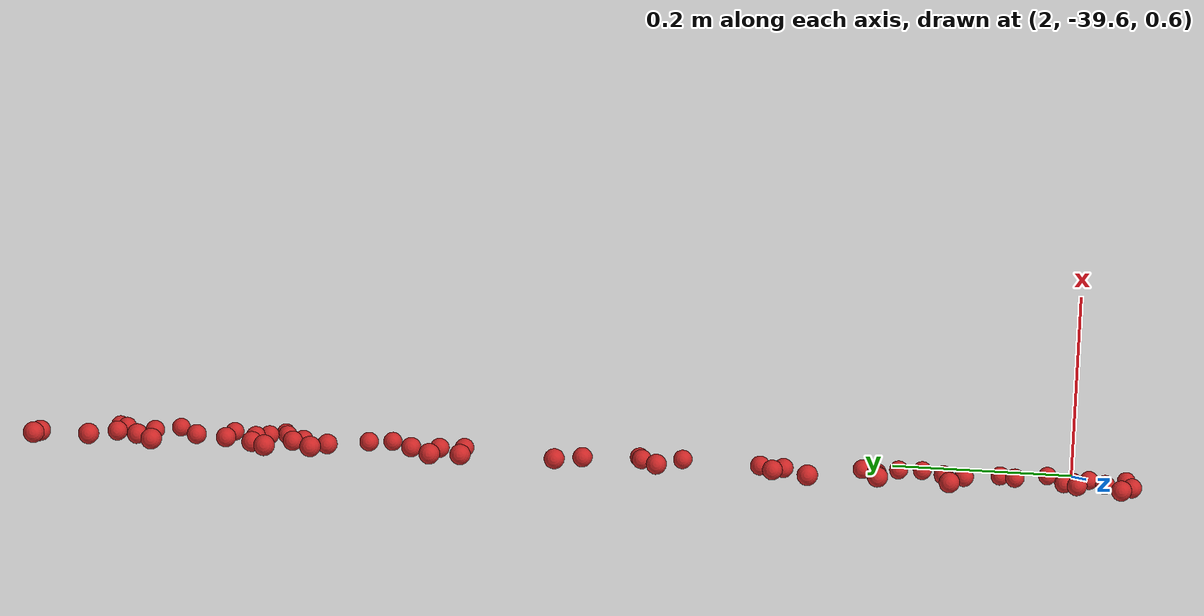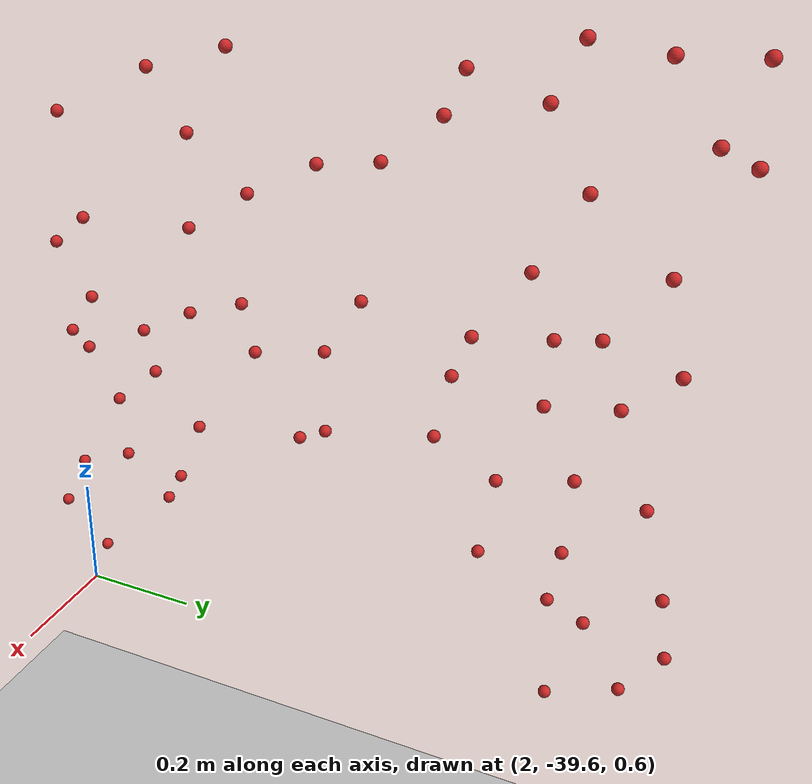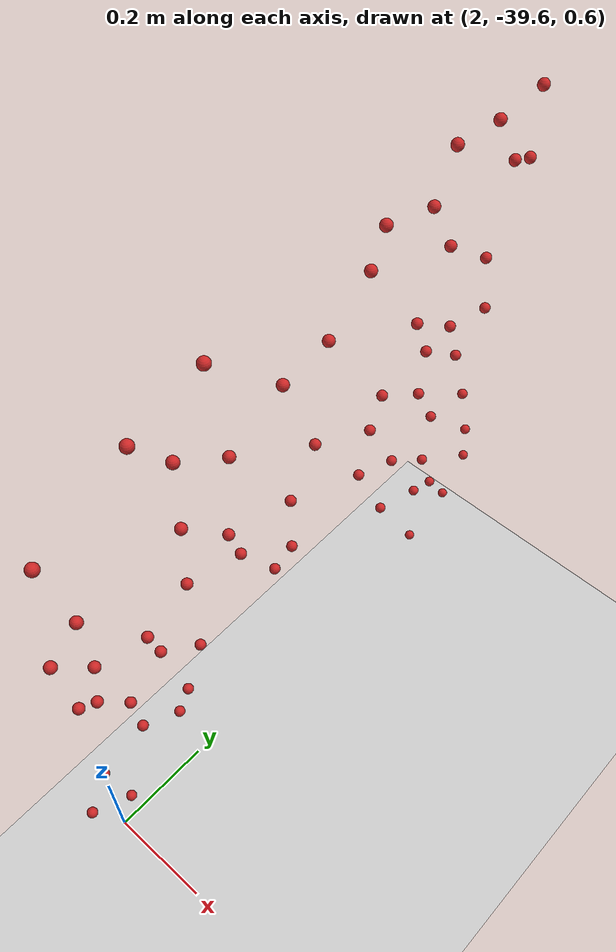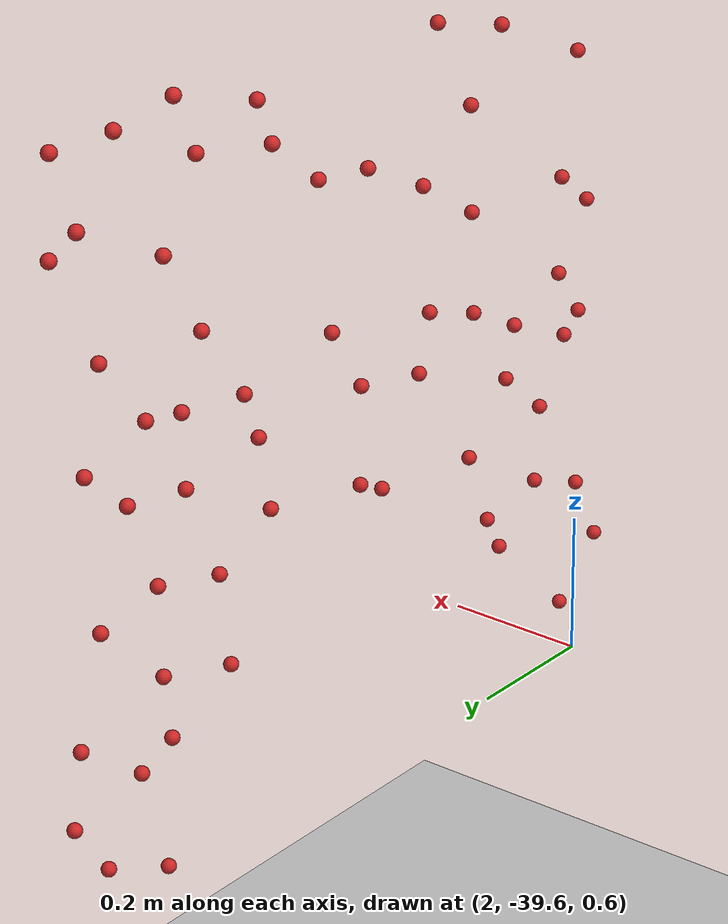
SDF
<sdf version="1.4">
 <world name="default">
  <model name="ground_plane">
   <static>1</static>
   <link name="link">
    <collision name="collision">
     <geometry><plane><normal>0 0 1</normal><size>100 100</size></plane></geometry>
     <surface><friction><ode><mu>100</mu><mu2>50</mu2></ode></friction></surface>
    </collision>
    <visual name="visual">
     <cast_shadows>0</cast_shadows>
     <geometry><plane><normal>0 0 1</normal><size>100 100</size></plane></geometry>
     <material>
      <script><uri>file://media/materials/scripts/gazebo.material</uri><name>Gazebo/Grey</name></script>
     </material>
    </visual>
    <velocity_decay><linear>0</linear><angular>0</angular></velocity_decay>
   </link>
  </model>
  <model name="apple48">
   <link name="my_apple">
    <inertial>
     <pose>2 0 0 0 -0 0</pose>
     <mass>1</mass>
     <inertia><ixx>1</ixx><ixy>0</ixy><ixz>0</ixz><iyy>1</iyy><iyz>0</iyz><izz>1</izz></inertia>
    </inertial>
    <collision name="my_apple_collision">
     <pose>2 0 1 0 -0 0</pose>
     <geometry><sphere><radius>0.01</radius></sphere></geometry>
    </collision>
    <visual name="my_apple_visual">
     <pose>2 0 1 0 -0 0</pose>
     <geometry><sphere><radius>0.01</radius></sphere></geometry>
     <material><script><name>Gazebo/Red</name><uri>__default__</uri></script></material>
    </visual>
    <gravity>0</gravity>
    <velocity_decay><linear>0</linear><angular>0</angular></velocity_decay>
   </link>
   <pose>0 -39.5987 -0.142085 0 -0 0</pose>
   <static>0</static>
  </model>
  <model name="apple49">
   <link name="my_apple">
    <inertial>
     <pose>2 0 0 0 -0 0</pose>
     <mass>1</mass>
     <inertia><ixx>1</ixx><ixy>0</ixy><ixz>0</ixz><iyy>1</iyy><iyz>0</iyz><izz>1</izz></inertia>
    </inertial>
    <collision name="my_apple_collision">
     <pose>2 0 1 0 -0 0</pose>
     <geometry><sphere><radius>0.01</radius></sphere></geometry>
    </collision>
    <visual name="my_apple_visual">
     <pose>2 0 1 0 -0 0</pose>
     <geometry><sphere><radius>0.01</radius></sphere></geometry>
     <material><script><name>Gazebo/Red</name><uri>__default__</uri></script></material>
    </visual>
    <gravity>0</gravity>
    <velocity_decay><linear>0</linear><angular>0</angular></velocity_decay>
   </link>
   <pose>0 -39.5629 0.092656 0 -0 0</pose>
   <static>0</static>
  </model>
  <model name="apple50">
   <link name="my_apple">
    <inertial>
     <pose>2 0 0 0 -0 0</pose>
     <mass>1</mass>
     <inertia><ixx>1</ixx><ixy>0</ixy><ixz>0</ixz><iyy>1</iyy><iyz>0</iyz><izz>1</izz></inertia>
    </inertial>
    <collision name="my_apple_collision">
     <pose>2 0 1 0 -0 0</pose>
     <geometry><sphere><radius>0.01</radius></sphere></geometry>
    </collision>
    <visual name="my_apple_visual">
     <pose>2 0 1 0 -0 0</pose>
     <geometry><sphere><radius>0.01</radius></sphere></geometry>
     <material><script><name>Gazebo/Red</name><uri>__default__</uri></script></material>
    </visual>
    <gravity>0</gravity>
    <velocity_decay><linear>0</linear><angular>0</angular></velocity_decay>
   </link>
   <pose>0 -39.5945 0.118369 0 -0 0</pose>
   <static>0</static>
  </model>
  <model name="apple52">
   <link name="my_apple">
    <inertial>
     <pose>2 0 0 0 -0 0</pose>
     <mass>1</mass>
     <inertia><ixx>1</ixx><ixy>0</ixy><ixz>0</ixz><iyy>1</iyy><iyz>0</iyz><izz>1</izz></inertia>
    </inertial>
    <collision name="my_apple_collision">
     <pose>2 0 1 0 -0 0</pose>
     <geometry><sphere><radius>0.01</radius></sphere></geometry>
    </collision>
    <visual name="my_apple_visual">
     <pose>2 0 1 0 -0 0</pose>
     <geometry><sphere><radius>0.01</radius></sphere></geometry>
     <material><script><name>Gazebo/Red</name><uri>__default__</uri></script></material>
    </visual>
    <gravity>0</gravity>
    <velocity_decay><linear>0</linear><angular>0</angular></velocity_decay>
   </link>
   <pose>0 -39.5472 0.188045 0 -0 0</pose>
   <static>0</static>
  </model>
  <model name="apple53">
   <link name="my_apple">
    <inertial>
     <pose>2 0 0 0 -0 0</pose>
     <mass>1</mass>
     <inertia><ixx>1</ixx><ixy>0</ixy><ixz>0</ixz><iyy>1</iyy><iyz>0</iyz><izz>1</izz></inertia>
    </inertial>
    <collision name="my_apple_collision">
     <pose>2 0 1 0 -0 0</pose>
     <geometry><sphere><radius>0.01</radius></sphere></geometry>
    </collision>
    <visual name="my_apple_visual">
     <pose>2 0 1 0 -0 0</pose>
     <geometry><sphere><radius>0.01</radius></sphere></geometry>
     <material><script><name>Gazebo/Red</name><uri>__default__</uri></script></material>
    </visual>
    <gravity>0</gravity>
    <velocity_decay><linear>0</linear><angular>0</angular></velocity_decay>
   </link>
   <pose>0 -39.6469 -0.238304 0 -0 0</pose>
   <static>0</static>
  </model>
  <model name="apple54">
   <link name="my_apple">
    <inertial>
     <pose>2 0 0 0 -0 0</pose>
     <mass>1</mass>
     <inertia><ixx>1</ixx><ixy>0</ixy><ixz>0</ixz><iyy>1</iyy><iyz>0</iyz><izz>1</izz></inertia>
    </inertial>
    <collision name="my_apple_collision">
     <pose>2 0 1 0 -0 0</pose>
     <geometry><sphere><radius>0.01</radius></sphere></geometry>
    </collision>
    <visual name="my_apple_visual">
     <pose>2 0 1 0 -0 0</pose>
     <geometry><sphere><radius>0.01</radius></sphere></geometry>
     <material><script><name>Gazebo/Red</name><uri>__default__</uri></script></material>
    </visual>
    <gravity>0</gravity>
    <velocity_decay><linear>0</linear><angular>0</angular></velocity_decay>
   </link>
   <pose>0 -39.6086 0.275968 0 -0 0</pose>
   <static>0</static>
  </model>
  <model name="apple56">
   <link name="my_apple">
    <inertial>
     <pose>2 0 0 0 -0 0</pose>
     <mass>1</mass>
     <inertia><ixx>1</ixx><ixy>0</ixy><ixz>0</ixz><iyy>1</iyy><iyz>0</iyz><izz>1</izz></inertia>
    </inertial>
    <collision name="my_apple_collision">
     <pose>2 0 1 0 -0 0</pose>
     <geometry><sphere><radius>0.01</radius></sphere></geometry>
    </collision>
    <visual name="my_apple_visual">
     <pose>2 0 1 0 -0 0</pose>
     <geometry><sphere><radius>0.01</radius></sphere></geometry>
     <material><script><name>Gazebo/Red</name><uri>__default__</uri></script></material>
    </visual>
    <gravity>0</gravity>
    <velocity_decay><linear>0</linear><angular>0</angular></velocity_decay>
   </link>
   <pose>0 -39.5496 0.325737 0 -0 0</pose>
   <static>0</static>
  </model>
  <model name="apple58">
   <link name="my_apple">
    <inertial>
     <pose>2 0 0 0 -0 0</pose>
     <mass>1</mass>
     <inertia><ixx>1</ixx><ixy>0</ixy><ixz>0</ixz><iyy>1</iyy><iyz>0</iyz><izz>1</izz></inertia>
    </inertial>
    <collision name="my_apple_collision">
     <pose>2 0 1 0 -0 0</pose>
     <geometry><sphere><radius>0.01</radius></sphere></geometry>
    </collision>
    <visual name="my_apple_visual">
     <pose>2 0 1 0 -0 0</pose>
     <geometry><sphere><radius>0.01</radius></sphere></geometry>
     <material><script><name>Gazebo/Red</name><uri>__default__</uri></script></material>
    </visual>
    <gravity>0</gravity>
    <velocity_decay><linear>0</linear><angular>0</angular></velocity_decay>
   </link>
   <pose>0 -39.5794 0.495524 0 -0 0</pose>
   <static>0</static>
  </model>
  <model name="apple61">
   <link name="my_apple">
    <inertial>
     <pose>2 0 0 0 -0 0</pose>
     <mass>1</mass>
     <inertia><ixx>1</ixx><ixy>0</ixy><ixz>0</ixz><iyy>1</iyy><iyz>0</iyz><izz>1</izz></inertia>
    </inertial>
    <collision name="my_apple_collision">
     <pose>2 0 1 0 -0 0</pose>
     <geometry><sphere><radius>0.01</radius></sphere></geometry>
    </collision>
    <visual name="my_apple_visual">
     <pose>2 0 1 0 -0 0</pose>
     <geometry><sphere><radius>0.01</radius></sphere></geometry>
     <material><script><name>Gazebo/Red</name><uri>__default__</uri></script></material>
    </visual>
    <gravity>0</gravity>
    <velocity_decay><linear>0</linear><angular>0</angular></velocity_decay>
   </link>
   <pose>0 -39.5091 0.004897 0 -0 0</pose>
   <static>0</static>
  </model>
  <model name="apple62">
   <link name="my_apple">
    <inertial>
     <pose>2 0 0 0 -0 0</pose>
     <mass>1</mass>
     <inertia><ixx>1</ixx><ixy>0</ixy><ixz>0</ixz><iyy>1</iyy><iyz>0</iyz><izz>1</izz></inertia>
    </inertial>
    <collision name="my_apple_collision">
     <pose>2 0 1 0 -0 0</pose>
     <geometry><sphere><radius>0.01</radius></sphere></geometry>
    </collision>
    <visual name="my_apple_visual">
     <pose>2 0 1 0 -0 0</pose>
     <geometry><sphere><radius>0.01</radius></sphere></geometry>
     <material><script><name>Gazebo/Red</name><uri>__default__</uri></script></material>
    </visual>
    <gravity>0</gravity>
    <velocity_decay><linear>0</linear><angular>0</angular></velocity_decay>
   </link>
   <pose>0 -39.4081 0.578641 0 -0 0</pose>
   <static>0</static>
  </model>
  <model name="apple65">
   <link name="my_apple">
    <inertial>
     <pose>2 0 0 0 -0 0</pose>
     <mass>1</mass>
     <inertia><ixx>1</ixx><ixy>0</ixy><ixz>0</ixz><iyy>1</iyy><iyz>0</iyz><izz>1</izz></inertia>
    </inertial>
    <collision name="my_apple_collision">
     <pose>2 0 1 0 -0 0</pose>
     <geometry><sphere><radius>0.01</radius></sphere></geometry>
    </collision>
    <visual name="my_apple_visual">
     <pose>2 0 1 0 -0 0</pose>
     <geometry><sphere><radius>0.01</radius></sphere></geometry>
     <material><script><name>Gazebo/Red</name><uri>__default__</uri></script></material>
    </visual>
    <gravity>0</gravity>
    <velocity_decay><linear>0</linear><angular>0</angular></velocity_decay>
   </link>
   <pose>0 -39.2715 0.618757 0 -0 0</pose>
   <static>0</static>
  </model>
  <model name="apple67">
   <link name="my_apple">
    <inertial>
     <pose>2 0 0 0 -0 0</pose>
     <mass>1</mass>
     <inertia><ixx>1</ixx><ixy>0</ixy><ixz>0</ixz><iyy>1</iyy><iyz>0</iyz><izz>1</izz></inertia>
    </inertial>
    <collision name="my_apple_collision">
     <pose>2 0 1 0 -0 0</pose>
     <geometry><sphere><radius>0.01</radius></sphere></geometry>
    </collision>
    <visual name="my_apple_visual">
     <pose>2 0 1 0 -0 0</pose>
     <geometry><sphere><radius>0.01</radius></sphere></geometry>
     <material><script><name>Gazebo/Red</name><uri>__default__</uri></script></material>
    </visual>
    <gravity>0</gravity>
    <velocity_decay><linear>0</linear><angular>0</angular></velocity_decay>
   </link>
   <pose>0 -39.5665 -0.314627 0 -0 0</pose>
   <static>0</static>
  </model>
  <model name="apple69">
   <link name="my_apple">
    <inertial>
     <pose>2 0 0 0 -0 0</pose>
     <mass>1</mass>
     <inertia><ixx>1</ixx><ixy>0</ixy><ixz>0</ixz><iyy>1</iyy><iyz>0</iyz><izz>1</izz></inertia>
    </inertial>
    <collision name="my_apple_collision">
     <pose>2 0 1 0 -0 0</pose>
     <geometry><sphere><radius>0.01</radius></sphere></geometry>
    </collision>
    <visual name="my_apple_visual">
     <pose>2 0 1 0 -0 0</pose>
     <geometry><sphere><radius>0.01</radius></sphere></geometry>
     <material><script><name>Gazebo/Red</name><uri>__default__</uri></script></material>
    </visual>
    <gravity>0</gravity>
    <velocity_decay><linear>0</linear><angular>0</angular></velocity_decay>
   </link>
   <pose>0 -39.1603 0.012573 0 -0 0</pose>
   <static>0</static>
  </model>
  <model name="apple70">
   <link name="my_apple">
    <inertial>
     <pose>2 0 0 0 -0 0</pose>
     <mass>1</mass>
     <inertia><ixx>1</ixx><ixy>0</ixy><ixz>0</ixz><iyy>1</iyy><iyz>0</iyz><izz>1</izz></inertia>
    </inertial>
    <collision name="my_apple_collision">
     <pose>2 0 1 0 -0 0</pose>
     <geometry><sphere><radius>0.01</radius></sphere></geometry>
    </collision>
    <visual name="my_apple_visual">
     <pose>2 0 1 0 -0 0</pose>
     <geometry><sphere><radius>0.01</radius></sphere></geometry>
     <material><script><name>Gazebo/Red</name><uri>__default__</uri></script></material>
    </visual>
    <gravity>0</gravity>
    <velocity_decay><linear>0</linear><angular>0</angular></velocity_decay>
   </link>
   <pose>0 -39.1295 0.466511 0 -0 0</pose>
   <static>0</static>
  </model>
  <model name="apple71">
   <link name="my_apple">
    <inertial>
     <pose>2 0 0 0 -0 0</pose>
     <mass>1</mass>
     <inertia><ixx>1</ixx><ixy>0</ixy><ixz>0</ixz><iyy>1</iyy><iyz>0</iyz><izz>1</izz></inertia>
    </inertial>
    <collision name="my_apple_collision">
     <pose>2 0 1 0 -0 0</pose>
     <geometry><sphere><radius>0.01</radius></sphere></geometry>
    </collision>
    <visual name="my_apple_visual">
     <pose>2 0 1 0 -0 0</pose>
     <geometry><sphere><radius>0.01</radius></sphere></geometry>
     <material><script><name>Gazebo/Red</name><uri>__default__</uri></script></material>
    </visual>
    <gravity>0</gravity>
    <velocity_decay><linear>0</linear><angular>0</angular></velocity_decay>
   </link>
   <pose>0 -39.2439 0.407336 0 -0 0</pose>
   <static>0</static>
  </model>
  <model name="apple72">
   <link name="my_apple">
    <inertial>
     <pose>2 0 0 0 -0 0</pose>
     <mass>1</mass>
     <inertia><ixx>1</ixx><ixy>0</ixy><ixz>0</ixz><iyy>1</iyy><iyz>0</iyz><izz>1</izz></inertia>
    </inertial>
    <collision name="my_apple_collision">
     <pose>2 0 1 0 -0 0</pose>
     <geometry><sphere><radius>0.01</radius></sphere></geometry>
    </collision>
    <visual name="my_apple_visual">
     <pose>2 0 1 0 -0 0</pose>
     <geometry><sphere><radius>0.01</radius></sphere></geometry>
     <material><script><name>Gazebo/Red</name><uri>__default__</uri></script></material>
    </visual>
    <gravity>0</gravity>
    <velocity_decay><linear>0</linear><angular>0</angular></velocity_decay>
   </link>
   <pose>0 -39.1165 0.173882 0 -0 0</pose>
   <static>0</static>
  </model>
  <model name="apple73">
   <link name="my_apple">
    <inertial>
     <pose>2 0 0 0 -0 0</pose>
     <mass>1</mass>
     <inertia><ixx>1</ixx><ixy>0</ixy><ixz>0</ixz><iyy>1</iyy><iyz>0</iyz><izz>1</izz></inertia>
    </inertial>
    <collision name="my_apple_collision">
     <pose>2 0 1 0 -0 0</pose>
     <geometry><sphere><radius>0.01</radius></sphere></geometry>
    </collision>
    <visual name="my_apple_visual">
     <pose>2 0 1 0 -0 0</pose>
     <geometry><sphere><radius>0.01</radius></sphere></geometry>
     <material><script><name>Gazebo/Red</name><uri>__default__</uri></script></material>
    </visual>
    <gravity>0</gravity>
    <velocity_decay><linear>0</linear><angular>0</angular></velocity_decay>
   </link>
   <pose>0 -39.1149 0.03527 0 -0 0</pose>
   <static>0</static>
  </model>
  <model name="apple74">
   <link name="my_apple">
    <inertial>
     <pose>2 0 0 0 -0 0</pose>
     <mass>1</mass>
     <inertia><ixx>1</ixx><ixy>0</ixy><ixz>0</ixz><iyy>1</iyy><iyz>0</iyz><izz>1</izz></inertia>
    </inertial>
    <collision name="my_apple_collision">
     <pose>2 0 1 0 -0 0</pose>
     <geometry><sphere><radius>0.01</radius></sphere></geometry>
    </collision>
    <visual name="my_apple_visual">
     <pose>2 0 1 0 -0 0</pose>
     <geometry><sphere><radius>0.01</radius></sphere></geometry>
     <material><script><name>Gazebo/Red</name><uri>__default__</uri></script></material>
    </visual>
    <gravity>0</gravity>
    <velocity_decay><linear>0</linear><angular>0</angular></velocity_decay>
   </link>
   <pose>0 -39.5005 -0.102532 0 -0 0</pose>
   <static>0</static>
  </model>
  <model name="apple78">
   <link name="my_apple">
    <inertial>
     <pose>2 0 0 0 -0 0</pose>
     <mass>1</mass>
     <inertia><ixx>1</ixx><ixy>0</ixy><ixz>0</ixz><iyy>1</iyy><iyz>0</iyz><izz>1</izz></inertia>
    </inertial>
    <collision name="my_apple_collision">
     <pose>2 0 1 0 -0 0</pose>
     <geometry><sphere><radius>0.01</radius></sphere></geometry>
    </collision>
    <visual name="my_apple_visual">
     <pose>2 0 1 0 -0 0</pose>
     <geometry><sphere><radius>0.01</radius></sphere></geometry>
     <material><script><name>Gazebo/Red</name><uri>__default__</uri></script></material>
    </visual>
    <gravity>0</gravity>
    <velocity_decay><linear>0</linear><angular>0</angular></velocity_decay>
   </link>
   <pose>0 -39.0566 0.268238 0 -0 0</pose>
   <static>0</static>
  </model>
  <model name="apple79">
   <link name="my_apple">
    <inertial>
     <pose>2 0 0 0 -0 0</pose>
     <mass>1</mass>
     <inertia><ixx>1</ixx><ixy>0</ixy><ixz>0</ixz><iyy>1</iyy><iyz>0</iyz><izz>1</izz></inertia>
    </inertial>
    <collision name="my_apple_collision">
     <pose>2 0 1 0 -0 0</pose>
     <geometry><sphere><radius>0.01</radius></sphere></geometry>
    </collision>
    <visual name="my_apple_visual">
     <pose>2 0 1 0 -0 0</pose>
     <geometry><sphere><radius>0.01</radius></sphere></geometry>
     <material><script><name>Gazebo/Red</name><uri>__default__</uri></script></material>
    </visual>
    <gravity>0</gravity>
    <velocity_decay><linear>0</linear><angular>0</angular></velocity_decay>
   </link>
   <pose>0 -39.3438 0.487426 0 -0 0</pose>
   <static>0</static>
  </model>
  <model name="apple80">
   <link name="my_apple">
    <inertial>
     <pose>2 0 0 0 -0 0</pose>
     <mass>1</mass>
     <inertia><ixx>1</ixx><ixy>0</ixy><ixz>0</ixz><iyy>1</iyy><iyz>0</iyz><izz>1</izz></inertia>
    </inertial>
    <collision name="my_apple_collision">
     <pose>2 0 1 0 -0 0</pose>
     <geometry><sphere><radius>0.01</radius></sphere></geometry>
    </collision>
    <visual name="my_apple_visual">
     <pose>2 0 1 0 -0 0</pose>
     <geometry><sphere><radius>0.01</radius></sphere></geometry>
     <material><script><name>Gazebo/Red</name><uri>__default__</uri></script></material>
    </visual>
    <gravity>0</gravity>
    <velocity_decay><linear>0</linear><angular>0</angular></velocity_decay>
   </link>
   <pose>0 -39.3556 0.194389 0 -0 0</pose>
   <static>0</static>
  </model>
  <model name="apple81">
   <link name="my_apple">
    <inertial>
     <pose>2 0 0 0 -0 0</pose>
     <mass>1</mass>
     <inertia><ixx>1</ixx><ixy>0</ixy><ixz>0</ixz><iyy>1</iyy><iyz>0</iyz><izz>1</izz></inertia>
    </inertial>
    <collision name="my_apple_collision">
     <pose>2 0 1 0 -0 0</pose>
     <geometry><sphere><radius>0.01</radius></sphere></geometry>
    </collision>
    <visual name="my_apple_visual">
     <pose>2 0 1 0 -0 0</pose>
     <geometry><sphere><radius>0.01</radius></sphere></geometry>
     <material><script><name>Gazebo/Red</name><uri>__default__</uri></script></material>
    </visual>
    <gravity>0</gravity>
    <velocity_decay><linear>0</linear><angular>0</angular></velocity_decay>
   </link>
   <pose>0 -39.3489 0.338402 0 -0 0</pose>
   <static>0</static>
  </model>
  <model name="apple82">
   <link name="my_apple">
    <inertial>
     <pose>2 0 0 0 -0 0</pose>
     <mass>1</mass>
     <inertia><ixx>1</ixx><ixy>0</ixy><ixz>0</ixz><iyy>1</iyy><iyz>0</iyz><izz>1</izz></inertia>
    </inertial>
    <collision name="my_apple_collision">
     <pose>2 0 1 0 -0 0</pose>
     <geometry><sphere><radius>0.01</radius></sphere></geometry>
    </collision>
    <visual name="my_apple_visual">
     <pose>2 0 1 0 -0 0</pose>
     <geometry><sphere><radius>0.01</radius></sphere></geometry>
     <material><script><name>Gazebo/Red</name><uri>__default__</uri></script></material>
    </visual>
    <gravity>0</gravity>
    <velocity_decay><linear>0</linear><angular>0</angular></velocity_decay>
   </link>
   <pose>0 -38.8315 0.018632 0 -0 0</pose>
   <static>0</static>
  </model>
  <model name="apple83">
   <link name="my_apple">
    <inertial>
     <pose>2 0 0 0 -0 0</pose>
     <mass>1</mass>
     <inertia><ixx>1</ixx><ixy>0</ixy><ixz>0</ixz><iyy>1</iyy><iyz>0</iyz><izz>1</izz></inertia>
    </inertial>
    <collision name="my_apple_collision">
     <pose>2 0 1 0 -0 0</pose>
     <geometry><sphere><radius>0.01</radius></sphere></geometry>
    </collision>
    <visual name="my_apple_visual">
     <pose>2 0 1 0 -0 0</pose>
     <geometry><sphere><radius>0.01</radius></sphere></geometry>
     <material><script><name>Gazebo/Red</name><uri>__default__</uri></script></material>
    </visual>
    <gravity>0</gravity>
    <velocity_decay><linear>0</linear><angular>0</angular></velocity_decay>
   </link>
   <pose>0 -38.6771 -0.195543 0 -0 0</pose>
   <static>0</static>
  </model>
  <model name="apple84">
   <link name="my_apple">
    <inertial>
     <pose>2 0 0 0 -0 0</pose>
     <mass>1</mass>
     <inertia><ixx>1</ixx><ixy>0</ixy><ixz>0</ixz><iyy>1</iyy><iyz>0</iyz><izz>1</izz></inertia>
    </inertial>
    <collision name="my_apple_collision">
     <pose>2 0 1 0 -0 0</pose>
     <geometry><sphere><radius>0.01</radius></sphere></geometry>
    </collision>
    <visual name="my_apple_visual">
     <pose>2 0 1 0 -0 0</pose>
     <geometry><sphere><radius>0.01</radius></sphere></geometry>
     <material><script><name>Gazebo/Red</name><uri>__default__</uri></script></material>
    </visual>
    <gravity>0</gravity>
    <velocity_decay><linear>0</linear><angular>0</angular></velocity_decay>
   </link>
   <pose>0 -39.2599 0.227606 0 -0 0</pose>
   <static>0</static>
  </model>
  <model name="apple85">
   <link name="my_apple">
    <inertial>
     <pose>2 0 0 0 -0 0</pose>
     <mass>1</mass>
     <inertia><ixx>1</ixx><ixy>0</ixy><ixz>0</ixz><iyy>1</iyy><iyz>0</iyz><izz>1</izz></inertia>
    </inertial>
    <collision name="my_apple_collision">
     <pose>2 0 1 0 -0 0</pose>
     <geometry><sphere><radius>0.01</radius></sphere></geometry>
    </collision>
    <visual name="my_apple_visual">
     <pose>2 0 1 0 -0 0</pose>
     <geometry><sphere><radius>0.01</radius></sphere></geometry>
     <material><script><name>Gazebo/Red</name><uri>__default__</uri></script></material>
    </visual>
    <gravity>0</gravity>
    <velocity_decay><linear>0</linear><angular>0</angular></velocity_decay>
   </link>
   <pose>0 -38.7217 -0.079001 0 -0 0</pose>
   <static>0</static>
  </model>
  <model name="apple86">
   <link name="my_apple">
    <inertial>
     <pose>2 0 0 0 -0 0</pose>
     <mass>1</mass>
     <inertia><ixx>1</ixx><ixy>0</ixy><ixz>0</ixz><iyy>1</iyy><iyz>0</iyz><izz>1</izz></inertia>
    </inertial>
    <collision name="my_apple_collision">
     <pose>2 0 1 0 -0 0</pose>
     <geometry><sphere><radius>0.01</radius></sphere></geometry>
    </collision>
    <visual name="my_apple_visual">
     <pose>2 0 1 0 -0 0</pose>
     <geometry><sphere><radius>0.01</radius></sphere></geometry>
     <material><script><name>Gazebo/Red</name><uri>__default__</uri></script></material>
    </visual>
    <gravity>0</gravity>
    <velocity_decay><linear>0</linear><angular>0</angular></velocity_decay>
   </link>
   <pose>0 -38.6081 0.027372 0 -0 0</pose>
   <static>0</static>
  </model>
  <model name="apple87">
   <link name="my_apple">
    <inertial>
     <pose>2 0 0 0 -0 0</pose>
     <mass>1</mass>
     <inertia><ixx>1</ixx><ixy>0</ixy><ixz>0</ixz><iyy>1</iyy><iyz>0</iyz><izz>1</izz></inertia>
    </inertial>
    <collision name="my_apple_collision">
     <pose>2 0 1 0 -0 0</pose>
     <geometry><sphere><radius>0.01</radius></sphere></geometry>
    </collision>
    <visual name="my_apple_visual">
     <pose>2 0 1 0 -0 0</pose>
     <geometry><sphere><radius>0.01</radius></sphere></geometry>
     <material><script><name>Gazebo/Red</name><uri>__default__</uri></script></material>
    </visual>
    <gravity>0</gravity>
    <velocity_decay><linear>0</linear><angular>0</angular></velocity_decay>
   </link>
   <pose>0 -38.7241 -0.349628 0 -0 0</pose>
   <static>0</static>
  </model>
  <model name="apple88">
   <link name="my_apple">
    <inertial>
     <pose>2 0 0 0 -0 0</pose>
     <mass>1</mass>
     <inertia><ixx>1</ixx><ixy>0</ixy><ixz>0</ixz><iyy>1</iyy><iyz>0</iyz><izz>1</izz></inertia>
    </inertial>
    <collision name="my_apple_collision">
     <pose>2 0 1 0 -0 0</pose>
     <geometry><sphere><radius>0.01</radius></sphere></geometry>
    </collision>
    <visual name="my_apple_visual">
     <pose>2 0 1 0 -0 0</pose>
     <geometry><sphere><radius>0.01</radius></sphere></geometry>
     <material><script><name>Gazebo/Red</name><uri>__default__</uri></script></material>
    </visual>
    <gravity>0</gravity>
    <velocity_decay><linear>0</linear><angular>0</angular></velocity_decay>
   </link>
   <pose>0 -38.7147 0.048491 0 -0 0</pose>
   <static>0</static>
  </model>
  <model name="apple89">
   <link name="my_apple">
    <inertial>
     <pose>2 0 0 0 -0 0</pose>
     <mass>1</mass>
     <inertia><ixx>1</ixx><ixy>0</ixy><ixz>0</ixz><iyy>1</iyy><iyz>0</iyz><izz>1</izz></inertia>
    </inertial>
    <collision name="my_apple_collision">
     <pose>2 0 1 0 -0 0</pose>
     <geometry><sphere><radius>0.01</radius></sphere></geometry>
    </collision>
    <visual name="my_apple_visual">
     <pose>2 0 1 0 -0 0</pose>
     <geometry><sphere><radius>0.01</radius></sphere></geometry>
     <material><script><name>Gazebo/Red</name><uri>__default__</uri></script></material>
    </visual>
    <gravity>0</gravity>
    <velocity_decay><linear>0</linear><angular>0</angular></velocity_decay>
   </link>
   <pose>0 -39.0304 0.481808 0 -0 0</pose>
   <static>0</static>
  </model>
  <model name="apple90">
   <link name="my_apple">
    <inertial>
     <pose>2 0 0 0 -0 0</pose>
     <mass>1</mass>
     <inertia><ixx>1</ixx><ixy>0</ixy><ixz>0</ixz><iyy>1</iyy><iyz>0</iyz><izz>1</izz></inertia>
    </inertial>
    <collision name="my_apple_collision">
     <pose>2 0 1 0 -0 0</pose>
     <geometry><sphere><radius>0.01</radius></sphere></geometry>
    </collision>
    <visual name="my_apple_visual">
     <pose>2 0 1 0 -0 0</pose>
     <geometry><sphere><radius>0.01</radius></sphere></geometry>
     <material><script><name>Gazebo/Red</name><uri>__default__</uri></script></material>
    </visual>
    <gravity>0</gravity>
    <velocity_decay><linear>0</linear><angular>0</angular></velocity_decay>
   </link>
   <pose>0 -39.238 0.148608 0 -0 0</pose>
   <static>0</static>
  </model>
  <model name="apple91">
   <link name="my_apple">
    <inertial>
     <pose>2 0 0 0 -0 0</pose>
     <mass>1</mass>
     <inertia><ixx>1</ixx><ixy>0</ixy><ixz>0</ixz><iyy>1</iyy><iyz>0</iyz><izz>1</izz></inertia>
    </inertial>
    <collision name="my_apple_collision">
     <pose>2 0 1 0 -0 0</pose>
     <geometry><sphere><radius>0.01</radius></sphere></geometry>
    </collision>
    <visual name="my_apple_visual">
     <pose>2 0 1 0 -0 0</pose>
     <geometry><sphere><radius>0.01</radius></sphere></geometry>
     <material><script><name>Gazebo/Red</name><uri>__default__</uri></script></material>
    </visual>
    <gravity>0</gravity>
    <velocity_decay><linear>0</linear><angular>0</angular></velocity_decay>
   </link>
   <pose>0 -38.7358 -0.170514 0 -0 0</pose>
   <static>0</static>
  </model>
  <model name="apple92">
   <link name="my_apple">
    <inertial>
     <pose>2 0 0 0 -0 0</pose>
     <mass>1</mass>
     <inertia><ixx>1</ixx><ixy>0</ixy><ixz>0</ixz><iyy>1</iyy><iyz>0</iyz><izz>1</izz></inertia>
    </inertial>
    <collision name="my_apple_collision">
     <pose>2 0 1 0 -0 0</pose>
     <geometry><sphere><radius>0.01</radius></sphere></geometry>
    </collision>
    <visual name="my_apple_visual">
     <pose>2 0 1 0 -0 0</pose>
     <geometry><sphere><radius>0.01</radius></sphere></geometry>
     <material><script><name>Gazebo/Red</name><uri>__default__</uri></script></material>
    </visual>
    <gravity>0</gravity>
    <velocity_decay><linear>0</linear><angular>0</angular></velocity_decay>
   </link>
   <pose>0 -38.5869 0.242779 0 -0 0</pose>
   <static>0</static>
  </model>
  <model name="apple95">
   <link name="my_apple">
    <inertial>
     <pose>2 0 0 0 -0 0</pose>
     <mass>1</mass>
     <inertia><ixx>1</ixx><ixy>0</ixy><ixz>0</ixz><iyy>1</iyy><iyz>0</iyz><izz>1</izz></inertia>
    </inertial>
    <collision name="my_apple_collision">
     <pose>2 0 1 0 -0 0</pose>
     <geometry><sphere><radius>0.01</radius></sphere></geometry>
    </collision>
    <visual name="my_apple_visual">
     <pose>2 0 1 0 -0 0</pose>
     <geometry><sphere><radius>0.01</radius></sphere></geometry>
     <material><script><name>Gazebo/Red</name><uri>__default__</uri></script></material>
    </visual>
    <gravity>0</gravity>
    <velocity_decay><linear>0</linear><angular>0</angular></velocity_decay>
   </link>
   <pose>0 -39.393 -0.120864 0 -0 0</pose>
   <static>0</static>
  </model>
  <model name="apple96">
   <link name="my_apple">
    <inertial>
     <pose>2 0 0 0 -0 0</pose>
     <mass>1</mass>
     <inertia><ixx>1</ixx><ixy>0</ixy><ixz>0</ixz><iyy>1</iyy><iyz>0</iyz><izz>1</izz></inertia>
    </inertial>
    <collision name="my_apple_collision">
     <pose>2 0 1 0 -0 0</pose>
     <geometry><sphere><radius>0.01</radius></sphere></geometry>
    </collision>
    <visual name="my_apple_visual">
     <pose>2 0 1 0 -0 0</pose>
     <geometry><sphere><radius>0.01</radius></sphere></geometry>
     <material><script><name>Gazebo/Red</name><uri>__default__</uri></script></material>
    </visual>
    <gravity>0</gravity>
    <velocity_decay><linear>0</linear><angular>0</angular></velocity_decay>
   </link>
   <pose>0 -39.421 -0.172039 0 -0 0</pose>
   <static>0</static>
  </model>
  <model name="apple97">
   <link name="my_apple">
    <inertial>
     <pose>2 0 0 0 -0 0</pose>
     <mass>1</mass>
     <inertia><ixx>1</ixx><ixy>0</ixy><ixz>0</ixz><iyy>1</iyy><iyz>0</iyz><izz>1</izz></inertia>
    </inertial>
    <collision name="my_apple_collision">
     <pose>2 0 1 0 -0 0</pose>
     <geometry><sphere><radius>0.01</radius></sphere></geometry>
    </collision>
    <visual name="my_apple_visual">
     <pose>2 0 1 0 -0 0</pose>
     <geometry><sphere><radius>0.01</radius></sphere></geometry>
     <material><script><name>Gazebo/Red</name><uri>__default__</uri></script></material>
    </visual>
    <gravity>0</gravity>
    <velocity_decay><linear>0</linear><angular>0</angular></velocity_decay>
   </link>
   <pose>0 -39.4474 0.145859 0 -0 0</pose>
   <static>0</static>
  </model>
  <model name="apple100">
   <link name="my_apple">
    <inertial>
     <pose>2 0 0 0 -0 0</pose>
     <mass>1</mass>
     <inertia><ixx>1</ixx><ixy>0</ixy><ixz>0</ixz><iyy>1</iyy><iyz>0</iyz><izz>1</izz></inertia>
    </inertial>
    <collision name="my_apple_collision">
     <pose>2 0 1 0 -0 0</pose>
     <geometry><sphere><radius>0.01</radius></sphere></geometry>
    </collision>
    <visual name="my_apple_visual">
     <pose>2 0 1 0 -0 0</pose>
     <geometry><sphere><radius>0.01</radius></sphere></geometry>
     <material><script><name>Gazebo/Red</name><uri>__default__</uri></script></material>
    </visual>
    <gravity>0</gravity>
    <velocity_decay><linear>0</linear><angular>0</angular></velocity_decay>
   </link>
   <pose>0 -38.5512 -0.219335 0 -0 0</pose>
   <static>0</static>
  </model>
  <model name="apple101">
   <link name="my_apple">
    <inertial>
     <pose>2 0 0 0 -0 0</pose>
     <mass>1</mass>
     <inertia><ixx>1</ixx><ixy>0</ixy><ixz>0</ixz><iyy>1</iyy><iyz>0</iyz><izz>1</izz></inertia>
    </inertial>
    <collision name="my_apple_collision">
     <pose>2 0 1 0 -0 0</pose>
     <geometry><sphere><radius>0.01</radius></sphere></geometry>
    </collision>
    <visual name="my_apple_visual">
     <pose>2 0 1 0 -0 0</pose>
     <geometry><sphere><radius>0.01</radius></sphere></geometry>
     <material><script><name>Gazebo/Red</name><uri>__default__</uri></script></material>
    </visual>
    <gravity>0</gravity>
    <velocity_decay><linear>0</linear><angular>0</angular></velocity_decay>
   </link>
   <pose>0 -39.4303 0.073751 0 -0 0</pose>
   <static>0</static>
  </model>
  <model name="apple104">
   <link name="my_apple">
    <inertial>
     <pose>2 0 0 0 -0 0</pose>
     <mass>1</mass>
     <inertia><ixx>1</ixx><ixy>0</ixy><ixz>0</ixz><iyy>1</iyy><iyz>0</iyz><izz>1</izz></inertia>
    </inertial>
    <collision name="my_apple_collision">
     <pose>2 0 1 0 -0 0</pose>
     <geometry><sphere><radius>0.01</radius></sphere></geometry>
    </collision>
    <visual name="my_apple_visual">
     <pose>2 0 1 0 -0 0</pose>
     <geometry><sphere><radius>0.01</radius></sphere></geometry>
     <material><script><name>Gazebo/Red</name><uri>__default__</uri></script></material>
    </visual>
    <gravity>0</gravity>
    <velocity_decay><linear>0</linear><angular>0</angular></velocity_decay>
   </link>
   <pose>0 -39.3497 -0.012996 0 -0 0</pose>
   <static>0</static>
  </model>
  <model name="apple105">
   <link name="my_apple">
    <inertial>
     <pose>2 0 0 0 -0 0</pose>
     <mass>1</mass>
     <inertia><ixx>1</ixx><ixy>0</ixy><ixz>0</ixz><iyy>1</iyy><iyz>0</iyz><izz>1</izz></inertia>
    </inertial>
    <collision name="my_apple_collision">
     <pose>2 0 1 0 -0 0</pose>
     <geometry><sphere><radius>0.01</radius></sphere></geometry>
    </collision>
    <visual name="my_apple_visual">
     <pose>2 0 1 0 -0 0</pose>
     <geometry><sphere><radius>0.01</radius></sphere></geometry>
     <material><script><name>Gazebo/Red</name><uri>__default__</uri></script></material>
    </visual>
    <gravity>0</gravity>
    <velocity_decay><linear>0</linear><angular>0</angular></velocity_decay>
   </link>
   <pose>0 -38.7649 0.263132 0 -0 0</pose>
   <static>0</static>
  </model>
  <model name="apple107">
   <link name="my_apple">
    <inertial>
     <pose>2 0 0 0 -0 0</pose>
     <mass>1</mass>
     <inertia><ixx>1</ixx><ixy>0</ixy><ixz>0</ixz><iyy>1</iyy><iyz>0</iyz><izz>1</izz></inertia>
    </inertial>
    <collision name="my_apple_collision">
     <pose>2 0 1 0 -0 0</pose>
     <geometry><sphere><radius>0.01</radius></sphere></geometry>
    </collision>
    <visual name="my_apple_visual">
     <pose>2 0 1 0 -0 0</pose>
     <geometry><sphere><radius>0.01</radius></sphere></geometry>
     <material><script><name>Gazebo/Red</name><uri>__default__</uri></script></material>
    </visual>
    <gravity>0</gravity>
    <velocity_decay><linear>0</linear><angular>0</angular></velocity_decay>
   </link>
   <pose>0 -38.567 -0.117503 0 -0 0</pose>
   <static>0</static>
  </model>
  <model name="apple109">
   <link name="my_apple">
    <inertial>
     <pose>2 0 0 0 -0 0</pose>
     <mass>1</mass>
     <inertia><ixx>1</ixx><ixy>0</ixy><ixz>0</ixz><iyy>1</iyy><iyz>0</iyz><izz>1</izz></inertia>
    </inertial>
    <collision name="my_apple_collision">
     <pose>2 0 1 0 -0 0</pose>
     <geometry><sphere><radius>0.01</radius></sphere></geometry>
    </collision>
    <visual name="my_apple_visual">
     <pose>2 0 1 0 -0 0</pose>
     <geometry><sphere><radius>0.01</radius></sphere></geometry>
     <material><script><name>Gazebo/Red</name><uri>__default__</uri></script></material>
    </visual>
    <gravity>0</gravity>
    <velocity_decay><linear>0</linear><angular>0</angular></velocity_decay>
   </link>
   <pose>0 -38.6112 -0.301589 0 -0 0</pose>
   <static>0</static>
  </model>
  <model name="apple110">
   <link name="my_apple">
    <inertial>
     <pose>2 0 0 0 -0 0</pose>
     <mass>1</mass>
     <inertia><ixx>1</ixx><ixy>0</ixy><ixz>0</ixz><iyy>1</iyy><iyz>0</iyz><izz>1</izz></inertia>
    </inertial>
    <collision name="my_apple_collision">
     <pose>2 0 1 0 -0 0</pose>
     <geometry><sphere><radius>0.01</radius></sphere></geometry>
    </collision>
    <visual name="my_apple_visual">
     <pose>2 0 1 0 -0 0</pose>
     <geometry><sphere><radius>0.01</radius></sphere></geometry>
     <material><script><name>Gazebo/Red</name><uri>__default__</uri></script></material>
    </visual>
    <gravity>0</gravity>
    <velocity_decay><linear>0</linear><angular>0</angular></velocity_decay>
   </link>
   <pose>0 -38.6535 0.658149 0 -0 0</pose>
   <static>0</static>
  </model>
  <model name="apple111">
   <link name="my_apple">
    <inertial>
     <pose>2 0 0 0 -0 0</pose>
     <mass>1</mass>
     <inertia><ixx>1</ixx><ixy>0</ixy><ixz>0</ixz><iyy>1</iyy><iyz>0</iyz><izz>1</izz></inertia>
    </inertial>
    <collision name="my_apple_collision">
     <pose>2 0 1 0 -0 0</pose>
     <geometry><sphere><radius>0.01</radius></sphere></geometry>
    </collision>
    <visual name="my_apple_visual">
     <pose>2 0 1 0 -0 0</pose>
     <geometry><sphere><radius>0.01</radius></sphere></geometry>
     <material><script><name>Gazebo/Red</name><uri>__default__</uri></script></material>
    </visual>
    <gravity>0</gravity>
    <velocity_decay><linear>0</linear><angular>0</angular></velocity_decay>
   </link>
   <pose>0 -38.8513 -0.115586 0 -0 0</pose>
   <static>0</static>
  </model>
  <model name="apple112">
   <link name="my_apple">
    <inertial>
     <pose>2 0 0 0 -0 0</pose>
     <mass>1</mass>
     <inertia><ixx>1</ixx><ixy>0</ixy><ixz>0</ixz><iyy>1</iyy><iyz>0</iyz><izz>1</izz></inertia>
    </inertial>
    <collision name="my_apple_collision">
     <pose>2 0 1 0 -0 0</pose>
     <geometry><sphere><radius>0.01</radius></sphere></geometry>
    </collision>
    <visual name="my_apple_visual">
     <pose>2 0 1 0 -0 0</pose>
     <geometry><sphere><radius>0.01</radius></sphere></geometry>
     <material><script><name>Gazebo/Red</name><uri>__default__</uri></script></material>
    </visual>
    <gravity>0</gravity>
    <velocity_decay><linear>0</linear><angular>0</angular></velocity_decay>
   </link>
   <pose>0 -38.6621 0.176842 0 -0 0</pose>
   <static>0</static>
  </model>
  <model name="apple114">
   <link name="my_apple">
    <inertial>
     <pose>2 0 0 0 -0 0</pose>
     <mass>1</mass>
     <inertia><ixx>1</ixx><ixy>0</ixy><ixz>0</ixz><iyy>1</iyy><iyz>0</iyz><izz>1</izz></inertia>
    </inertial>
    <collision name="my_apple_collision">
     <pose>2 0 1 0 -0 0</pose>
     <geometry><sphere><radius>0.01</radius></sphere></geometry>
    </collision>
    <visual name="my_apple_visual">
     <pose>2 0 1 0 -0 0</pose>
     <geometry><sphere><radius>0.01</radius></sphere></geometry>
     <material><script><name>Gazebo/Red</name><uri>__default__</uri></script></material>
    </visual>
    <gravity>0</gravity>
    <velocity_decay><linear>0</linear><angular>0</angular></velocity_decay>
   </link>
   <pose>0 -38.6986 0.275596 0 -0 0</pose>
   <static>0</static>
  </model>
  <model name="apple116">
   <link name="my_apple">
    <inertial>
     <pose>2 0 0 0 -0 0</pose>
     <mass>1</mass>
     <inertia><ixx>1</ixx><ixy>0</ixy><ixz>0</ixz><iyy>1</iyy><iyz>0</iyz><izz>1</izz></inertia>
    </inertial>
    <collision name="my_apple_collision">
     <pose>2 0 1 0 -0 0</pose>
     <geometry><sphere><radius>0.01</radius></sphere></geometry>
    </collision>
    <visual name="my_apple_visual">
     <pose>2 0 1 0 -0 0</pose>
     <geometry><sphere><radius>0.01</radius></sphere></geometry>
     <material><script><name>Gazebo/Red</name><uri>__default__</uri></script></material>
    </visual>
    <gravity>0</gravity>
    <velocity_decay><linear>0</linear><angular>0</angular></velocity_decay>
   </link>
   <pose>0 -38.6177 0.378439 0 -0 0</pose>
   <static>0</static>
  </model>
  <model name="apple117">
   <link name="my_apple">
    <inertial>
     <pose>2 0 0 0 -0 0</pose>
     <mass>1</mass>
     <inertia><ixx>1</ixx><ixy>0</ixy><ixz>0</ixz><iyy>1</iyy><iyz>0</iyz><izz>1</izz></inertia>
    </inertial>
    <collision name="my_apple_collision">
     <pose>2 0 1 0 -0 0</pose>
     <geometry><sphere><radius>0.01</radius></sphere></geometry>
    </collision>
    <visual name="my_apple_visual">
     <pose>2 0 1 0 -0 0</pose>
     <geometry><sphere><radius>0.01</radius></sphere></geometry>
     <material><script><name>Gazebo/Red</name><uri>__default__</uri></script></material>
    </visual>
    <gravity>0</gravity>
    <velocity_decay><linear>0</linear><angular>0</angular></velocity_decay>
   </link>
   <pose>0 -38.7702 0.158675 0 -0 0</pose>
   <static>0</static>
  </model>
  <model name="apple119">
   <link name="my_apple">
    <inertial>
     <pose>2 0 0 0 -0 0</pose>
     <mass>1</mass>
     <inertia><ixx>1</ixx><ixy>0</ixy><ixz>0</ixz><iyy>1</iyy><iyz>0</iyz><izz>1</izz></inertia>
    </inertial>
    <collision name="my_apple_collision">
     <pose>2 0 1 0 -0 0</pose>
     <geometry><sphere><radius>0.01</radius></sphere></geometry>
    </collision>
    <visual name="my_apple_visual">
     <pose>2 0 1 0 -0 0</pose>
     <geometry><sphere><radius>0.01</radius></sphere></geometry>
     <material><script><name>Gazebo/Red</name><uri>__default__</uri></script></material>
    </visual>
    <gravity>0</gravity>
    <velocity_decay><linear>0</linear><angular>0</angular></velocity_decay>
   </link>
   <pose>0 -38.7603 0.670256 0 -0 0</pose>
   <static>0</static>
  </model>
  <model name="apple120">
   <link name="my_apple">
    <inertial>
     <pose>2 0 0 0 -0 0</pose>
     <mass>1</mass>
     <inertia><ixx>1</ixx><ixy>0</ixy><ixz>0</ixz><iyy>1</iyy><iyz>0</iyz><izz>1</izz></inertia>
    </inertial>
    <collision name="my_apple_collision">
     <pose>2 0 1 0 -0 0</pose>
     <geometry><sphere><radius>0.01</radius></sphere></geometry>
    </collision>
    <visual name="my_apple_visual">
     <pose>2 0 1 0 -0 0</pose>
     <geometry><sphere><radius>0.01</radius></sphere></geometry>
     <material><script><name>Gazebo/Red</name><uri>__default__</uri></script></material>
    </visual>
    <gravity>0</gravity>
    <velocity_decay><linear>0</linear><angular>0</angular></velocity_decay>
   </link>
   <pose>0 -38.7991 0.586494 0 -0 0</pose>
   <static>0</static>
  </model>
  <model name="apple128">
   <link name="my_apple">
    <inertial>
     <pose>2 0 0 0 -0 0</pose>
     <mass>1</mass>
     <inertia><ixx>1</ixx><ixy>0</ixy><ixz>0</ixz><iyy>1</iyy><iyz>0</iyz><izz>1</izz></inertia>
    </inertial>
    <collision name="my_apple_collision">
     <pose>2 0 1 0 -0 0</pose>
     <geometry><sphere><radius>0.01</radius></sphere></geometry>
    </collision>
    <visual name="my_apple_visual">
     <pose>2 0 1 0 -0 0</pose>
     <geometry><sphere><radius>0.01</radius></sphere></geometry>
     <material><script><name>Gazebo/Red</name><uri>__default__</uri></script></material>
    </visual>
    <gravity>0</gravity>
    <velocity_decay><linear>0</linear><angular>0</angular></velocity_decay>
   </link>
   <pose>0 -38.5373 0.534315 0 -0 0</pose>
   <static>0</static>
  </model>
  <model name="apple131">
   <link name="my_apple">
    <inertial>
     <pose>2 0 0 0 -0 0</pose>
     <mass>1</mass>
     <inertia><ixx>1</ixx><ixy>0</ixy><ixz>0</ixz><iyy>1</iyy><iyz>0</iyz><izz>1</izz></inertia>
    </inertial>
    <collision name="my_apple_collision">
     <pose>2 0 1 0 -0 0</pose>
     <geometry><sphere><radius>0.01</radius></sphere></geometry>
    </collision>
    <visual name="my_apple_visual">
     <pose>2 0 1 0 -0 0</pose>
     <geometry><sphere><radius>0.01</radius></sphere></geometry>
     <material><script><name>Gazebo/Red</name><uri>__default__</uri></script></material>
    </visual>
    <gravity>0</gravity>
    <velocity_decay><linear>0</linear><angular>0</angular></velocity_decay>
   </link>
   <pose>0 -38.5854 0.554474 0 -0 0</pose>
   <static>0</static>
  </model>
  <model name="apple132">
   <link name="my_apple">
    <inertial>
     <pose>2 0 0 0 -0 0</pose>
     <mass>1</mass>
     <inertia><ixx>1</ixx><ixy>0</ixy><ixz>0</ixz><iyy>1</iyy><iyz>0</iyz><izz>1</izz></inertia>
    </inertial>
    <collision name="my_apple_collision">
     <pose>2 0 1 0 -0 0</pose>
     <geometry><sphere><radius>0.01</radius></sphere></geometry>
    </collision>
    <visual name="my_apple_visual">
     <pose>2 0 1 0 -0 0</pose>
     <geometry><sphere><radius>0.01</radius></sphere></geometry>
     <material><script><name>Gazebo/Red</name><uri>__default__</uri></script></material>
    </visual>
    <gravity>0</gravity>
    <velocity_decay><linear>0</linear><angular>0</angular></velocity_decay>
   </link>
   <pose>0 -38.9102 0.176787 0 -0 0</pose>
   <static>0</static>
  </model>
  <model name="apple133">
   <link name="my_apple">
    <inertial>
     <pose>2 0 0 0 -0 0</pose>
     <mass>1</mass>
     <inertia><ixx>1</ixx><ixy>0</ixy><ixz>0</ixz><iyy>1</iyy><iyz>0</iyz><izz>1</izz></inertia>
    </inertial>
    <collision name="my_apple_collision">
     <pose>2 0 1 0 -0 0</pose>
     <geometry><sphere><radius>0.01</radius></sphere></geometry>
    </collision>
    <visual name="my_apple_visual">
     <pose>2 0 1 0 -0 0</pose>
     <geometry><sphere><radius>0.01</radius></sphere></geometry>
     <material><script><name>Gazebo/Red</name><uri>__default__</uri></script></material>
    </visual>
    <gravity>0</gravity>
    <velocity_decay><linear>0</linear><angular>0</angular></velocity_decay>
   </link>
   <pose>0 -38.8835 0.245121 0 -0 0</pose>
   <static>0</static>
  </model>
  <model name="apple136">
   <link name="my_apple">
    <inertial>
     <pose>2 0 0 0 -0 0</pose>
     <mass>1</mass>
     <inertia><ixx>1</ixx><ixy>0</ixy><ixz>0</ixz><iyy>1</iyy><iyz>0</iyz><izz>1</izz></inertia>
    </inertial>
    <collision name="my_apple_collision">
     <pose>2 0 1 0 -0 0</pose>
     <geometry><sphere><radius>0.01</radius></sphere></geometry>
    </collision>
    <visual name="my_apple_visual">
     <pose>2 0 1 0 -0 0</pose>
     <geometry><sphere><radius>0.01</radius></sphere></geometry>
     <material><script><name>Gazebo/Red</name><uri>__default__</uri></script></material>
    </visual>
    <gravity>0</gravity>
    <velocity_decay><linear>0</linear><angular>0</angular></velocity_decay>
   </link>
   <pose>0 -38.9136 0.62012 0 -0 0</pose>
   <static>0</static>
  </model>
  <model name="apple139">
   <link name="my_apple">
    <inertial>
     <pose>2 0 0 0 -0 0</pose>
     <mass>1</mass>
     <inertia><ixx>1</ixx><ixy>0</ixy><ixz>0</ixz><iyy>1</iyy><iyz>0</iyz><izz>1</izz></inertia>
    </inertial>
    <collision name="my_apple_collision">
     <pose>2 0 1 0 -0 0</pose>
     <geometry><sphere><radius>0.01</radius></sphere></geometry>
    </collision>
    <visual name="my_apple_visual">
     <pose>2 0 1 0 -0 0</pose>
     <geometry><sphere><radius>0.01</radius></sphere></geometry>
     <material><script><name>Gazebo/Red</name><uri>__default__</uri></script></material>
    </visual>
    <gravity>0</gravity>
    <velocity_decay><linear>0</linear><angular>0</angular></velocity_decay>
   </link>
   <pose>0 -38.9411 0.555953 0 -0 0</pose>
   <static>0</static>
  </model>
  <model name="apple140">
   <link name="my_apple">
    <inertial>
     <pose>2 0 0 0 -0 0</pose>
     <mass>1</mass>
     <inertia><ixx>1</ixx><ixy>0</ixy><ixz>0</ixz><iyy>1</iyy><iyz>0</iyz><izz>1</izz></inertia>
    </inertial>
    <collision name="my_apple_collision">
     <pose>2 0 1 0 -0 0</pose>
     <geometry><sphere><radius>0.01</radius></sphere></geometry>
    </collision>
    <visual name="my_apple_visual">
     <pose>2 0 1 0 -0 0</pose>
     <geometry><sphere><radius>0.01</radius></sphere></geometry>
     <material><script><name>Gazebo/Red</name><uri>__default__</uri></script></material>
    </visual>
    <gravity>0</gravity>
    <velocity_decay><linear>0</linear><angular>0</angular></velocity_decay>
   </link>
   <pose>0 -38.9328 0.070121 0 -0 0</pose>
   <static>0</static>
  </model>
  <model name="apple143">
   <link name="my_apple">
    <inertial>
     <pose>2 0 0 0 -0 0</pose>
     <mass>1</mass>
     <inertia><ixx>1</ixx><ixy>0</ixy><ixz>0</ixz><iyy>1</iyy><iyz>0</iyz><izz>1</izz></inertia>
    </inertial>
    <collision name="my_apple_collision">
     <pose>2 0 1 0 -0 0</pose>
     <geometry><sphere><radius>0.01</radius></sphere></geometry>
    </collision>
    <visual name="my_apple_visual">
     <pose>2 0 1 0 -0 0</pose>
     <geometry><sphere><radius>0.01</radius></sphere></geometry>
     <material><script><name>Gazebo/Red</name><uri>__default__</uri></script></material>
    </visual>
    <gravity>0</gravity>
    <velocity_decay><linear>0</linear><angular>0</angular></velocity_decay>
   </link>
   <pose>0 -38.8043 0.356686 0 -0 0</pose>
   <static>0</static>
  </model>
  <model name="apple148">
   <link name="my_apple">
    <inertial>
     <pose>2 0 0 0 -0 0</pose>
     <mass>1</mass>
     <inertia><ixx>1</ixx><ixy>0</ixy><ixz>0</ixz><iyy>1</iyy><iyz>0</iyz><izz>1</izz></inertia>
    </inertial>
    <collision name="my_apple_collision">
     <pose>2 0 1 0 -0 0</pose>
     <geometry><sphere><radius>0.01</radius></sphere></geometry>
    </collision>
    <visual name="my_apple_visual">
     <pose>2 0 1 0 -0 0</pose>
     <geometry><sphere><radius>0.01</radius></sphere></geometry>
     <material><script><name>Gazebo/Red</name><uri>__default__</uri></script></material>
    </visual>
    <gravity>0</gravity>
    <velocity_decay><linear>0</linear><angular>0</angular></velocity_decay>
   </link>
   <pose>0 -38.7368 0.476135 0 -0 0</pose>
   <static>0</static>
  </model>
  <model name="apple157">
   <link name="my_apple">
    <inertial>
     <pose>2 0 0 0 -0 0</pose>
     <mass>1</mass>
     <inertia><ixx>1</ixx><ixy>0</ixy><ixz>0</ixz><iyy>1</iyy><iyz>0</iyz><izz>1</izz></inertia>
    </inertial>
    <collision name="my_apple_collision">
     <pose>2 0 1 0 -0 0</pose>
     <geometry><sphere><radius>0.01</radius></sphere></geometry>
    </collision>
    <visual name="my_apple_visual">
     <pose>2 0 1 0 -0 0</pose>
     <geometry><sphere><radius>0.01</radius></sphere></geometry>
     <material><script><name>Gazebo/Red</name><uri>__default__</uri></script></material>
    </visual>
    <gravity>0</gravity>
    <velocity_decay><linear>0</linear><angular>0</angular></velocity_decay>
   </link>
   <pose>0 -38.5436 0.66426 0 -0 0</pose>
   <static>0</static>
  </model>
 </world>
</sdf>
